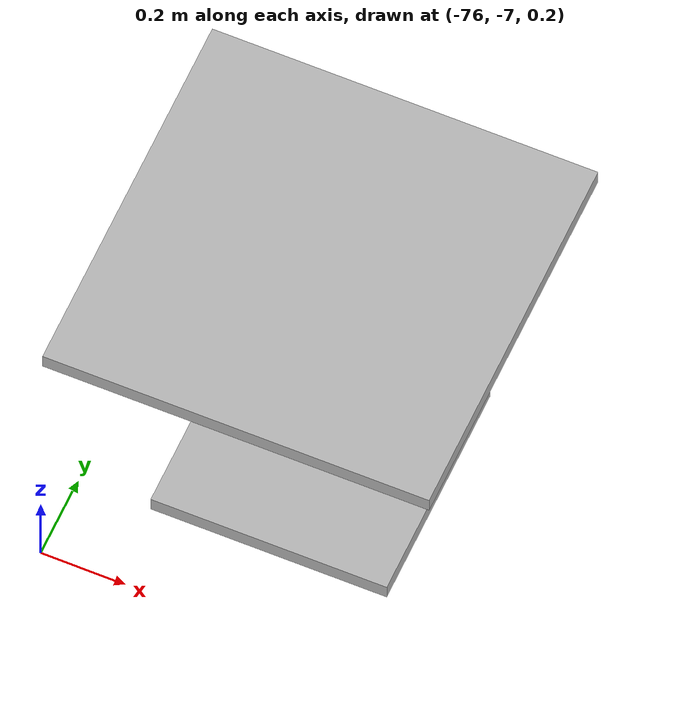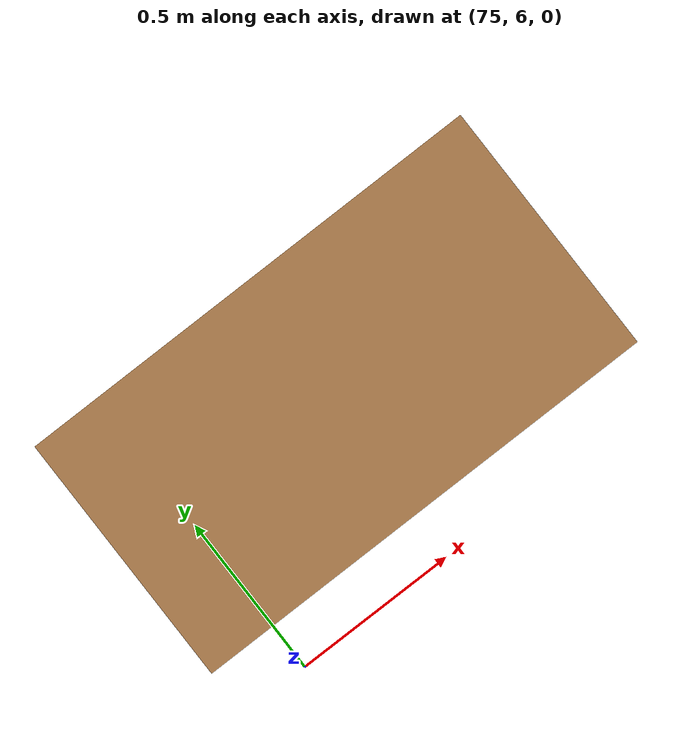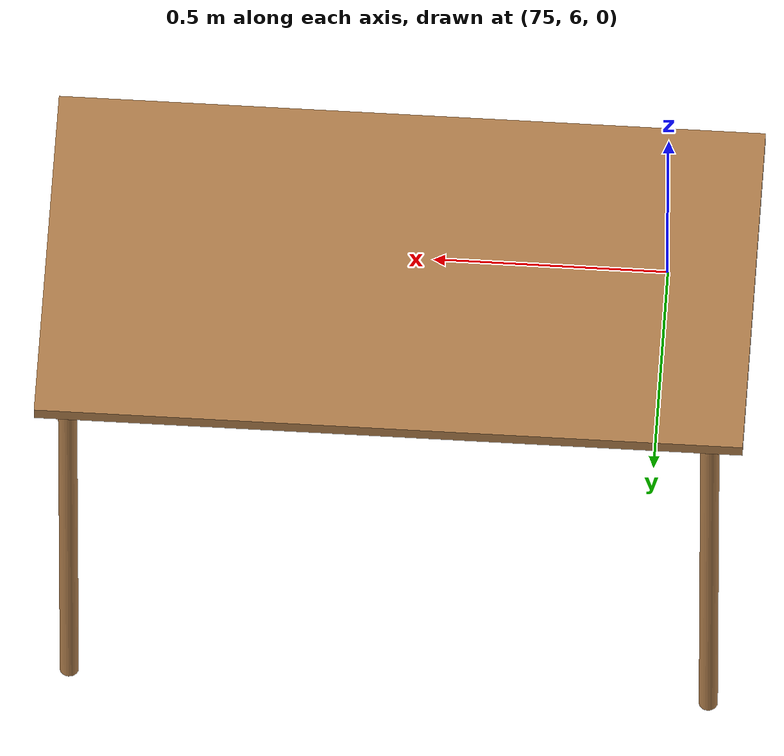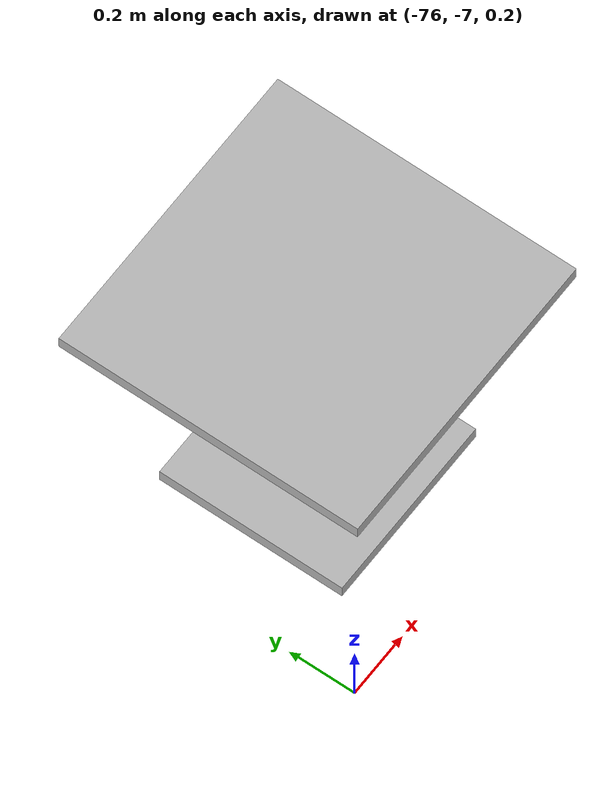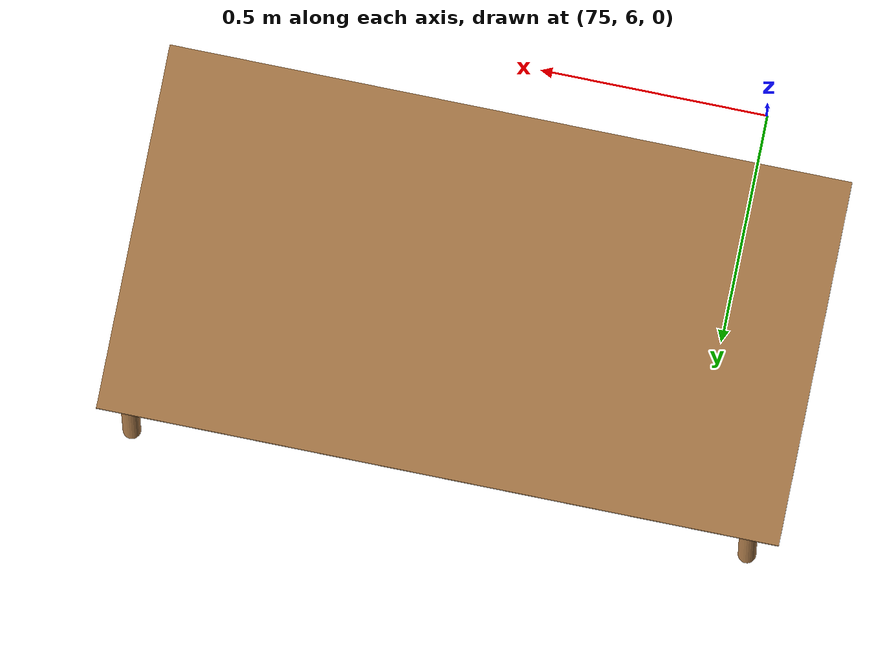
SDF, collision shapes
<?xml version='1.0'?>
<sdf version='1.7'>
  <model name='new_world'>
    <model name='cafe_table'>
      <static>1</static>
      <link name='link'>
        <collision name='surface'>
          <pose>0 0 0.755 0 -0 0</pose>
          <geometry>
            <box>
              <size>0.913 0.913 0.04</size>
            </box>
          </geometry>
        </collision>
        <collision name='column'>
          <pose>0 0 0.37 0 -0 0</pose>
          <geometry>
            <box>
              <size>0.042 0.042 0.74</size>
            </box>
          </geometry>
        </collision>
        <collision name='base'>
          <pose>0 0 0.02 0 -0 0</pose>
          <geometry>
            <box>
              <size>0.56 0.56 0.04</size>
            </box>
          </geometry>
        </collision>
        <visual name='visual'>
          <geometry>
            <mesh>
              <uri>model://cafe_table/meshes/cafe_table.dae</uri>
            </mesh>
          </geometry>
        </visual>
      </link>
      <pose>-75.536 -6.54691 0.245667 0 -0 0</pose>
    </model>
    <model name='table'>
      <static>1</static>
      <link name='link'>
        <collision name='surface'>
          <pose>0 0 1 0 -0 0</pose>
          <geometry>
            <box>
              <size>1.5 0.8 0.03</size>
            </box>
          </geometry>
          <surface>
            <friction>
              <ode>
                <mu>0.6</mu>
                <mu2>0.6</mu2>
              </ode>
            </friction>
          </surface>
        </collision>
        <visual name='visual1'>
          <pose>0 0 1 0 -0 0</pose>
          <geometry>
            <box>
              <size>1.5 0.8 0.03</size>
            </box>
          </geometry>
          <material>
            <script>
              <uri>file://media/materials/scripts/gazebo.material</uri>
              <name>Gazebo/Wood</name>
            </script>
          </material>
        </visual>
        <collision name='front_left_leg'>
          <pose>0.68 0.38 0.5 0 -0 0</pose>
          <geometry>
            <cylinder>
              <radius>0.02</radius>
              <length>1</length>
            </cylinder>
          </geometry>
        </collision>
        <visual name='front_left_leg'>
          <pose>0.68 0.38 0.5 0 -0 0</pose>
          <geometry>
            <cylinder>
              <radius>0.02</radius>
              <length>1</length>
            </cylinder>
          </geometry>
          <material>
            <script>
              <uri>file://media/materials/scripts/gazebo.material</uri>
              <name>Gazebo/Grey</name>
            </script>
          </material>
        </visual>
        <collision name='front_right_leg'>
          <pose>0.68 -0.38 0.5 0 -0 0</pose>
          <geometry>
            <cylinder>
              <radius>0.02</radius>
              <length>1</length>
            </cylinder>
          </geometry>
        </collision>
        <visual name='front_right_leg'>
          <pose>0.68 -0.38 0.5 0 -0 0</pose>
          <geometry>
            <cylinder>
              <radius>0.02</radius>
              <length>1</length>
            </cylinder>
          </geometry>
          <material>
            <script>
              <uri>file://media/materials/scripts/gazebo.material</uri>
              <name>Gazebo/Grey</name>
            </script>
          </material>
        </visual>
        <collision name='back_right_leg'>
          <pose>-0.68 -0.38 0.5 0 -0 0</pose>
          <geometry>
            <cylinder>
              <radius>0.02</radius>
              <length>1</length>
            </cylinder>
          </geometry>
        </collision>
        <visual name='back_right_leg'>
          <pose>-0.68 -0.38 0.5 0 -0 0</pose>
          <geometry>
            <cylinder>
              <radius>0.02</radius>
              <length>1</length>
            </cylinder>
          </geometry>
          <material>
            <script>
              <uri>file://media/materials/scripts/gazebo.material</uri>
              <name>Gazebo/Grey</name>
            </script>
          </material>
        </visual>
        <collision name='back_left_leg'>
          <pose>-0.68 0.38 0.5 0 -0 0</pose>
          <geometry>
            <cylinder>
              <radius>0.02</radius>
              <length>1</length>
            </cylinder>
          </geometry>
        </collision>
        <visual name='back_left_leg'>
          <pose>-0.68 0.38 0.5 0 -0 0</pose>
          <geometry>
            <cylinder>
              <radius>0.02</radius>
              <length>1</length>
            </cylinder>
          </geometry>
          <material>
            <script>
              <uri>file://media/materials/scripts/gazebo.material</uri>
              <name>Gazebo/Grey</name>
            </script>
          </material>
        </visual>
      </link>
      <pose>75.536 6.54691 -0.245667 0 -0 0</pose>
    </model>
    <static>0</static>
    <allow_auto_disable>1</allow_auto_disable>
  </model>
</sdf>
